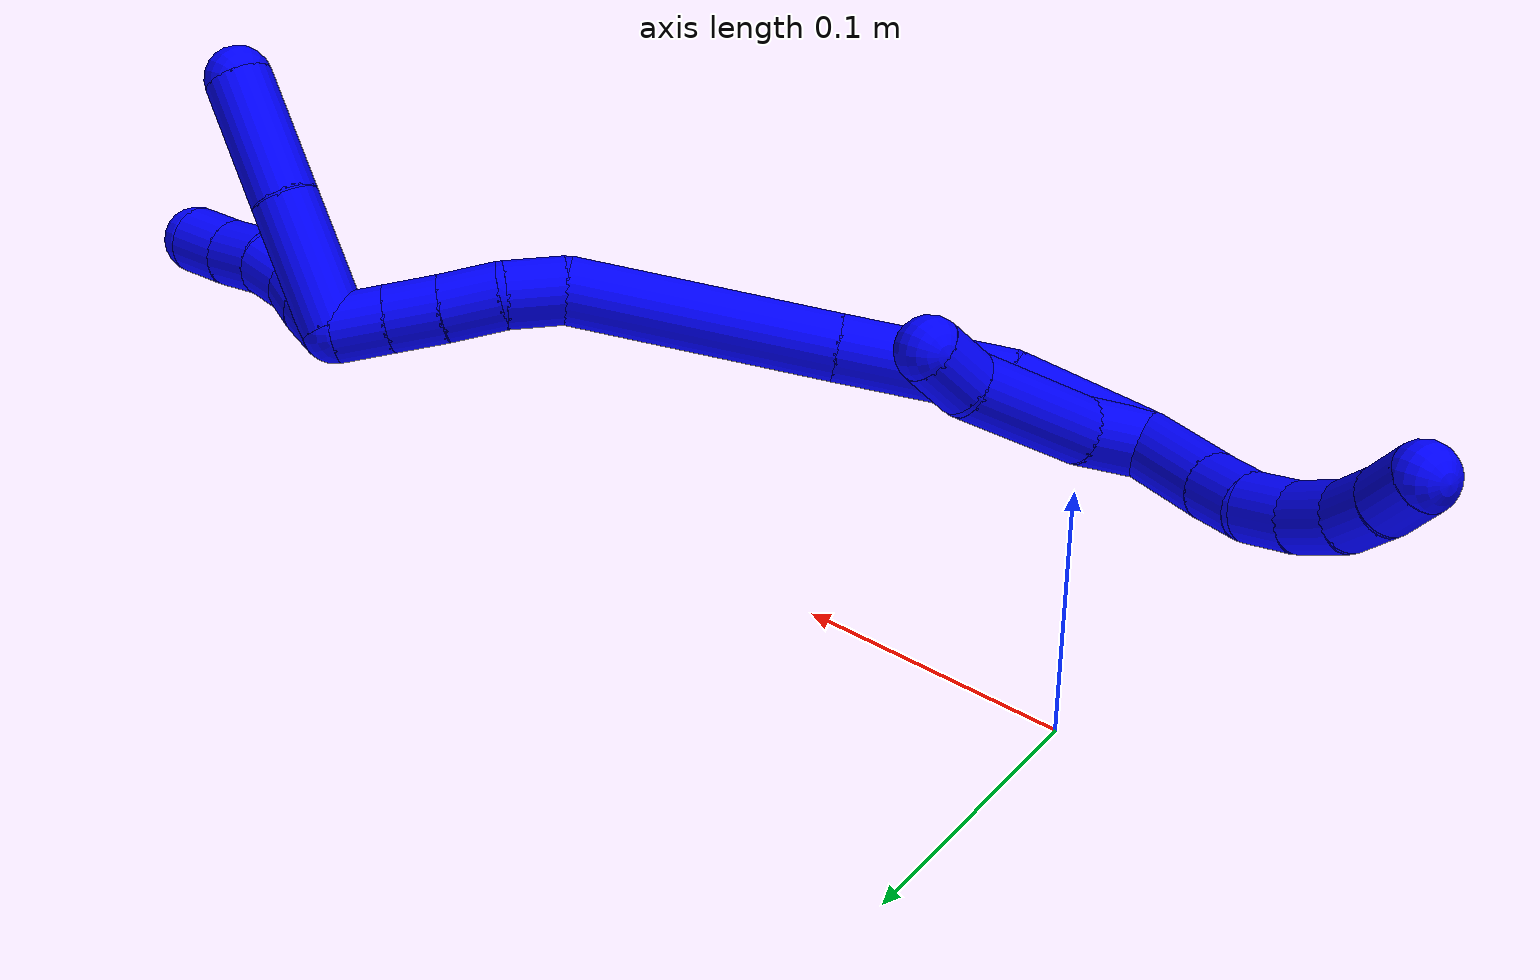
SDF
<sdf version="1.7">
 <world name="default">
  <model name="photoneo_s_sensor">
   <static>1</static>
   <pose>0 0 2 1.57079 1.57079 3.14159</pose>
   <link name="link">
    <inertial><mass>0.1</mass></inertial>
    <sensor name="sensor" type="depth">
     <update_rate>30</update_rate>
     <camera>
      <horizontal_fov>1.22</horizontal_fov>
      <image><width>1920</width><height>1200</height><format>B8G8R8</format></image>
      <clip><near>0.1</near><far>4</far></clip>
      <depth_camera><output>points</output></depth_camera>
     </camera>
     <plugin name="camera_plugin" filename="libgazebo_ros_depth_camera.so">
      <baseline>0.2</baseline>
      <alwaysOn>1</alwaysOn>
      <updateRate>0.0</updateRate>
      <cameraName>camera_ir</cameraName>
      <imageTopicName>/camera/color/image_raw</imageTopicName>
      <cameraInfoTopicName>/camera/color/camera_info</cameraInfoTopicName>
      <depthImageTopicName>/camera/depth/image_raw</depthImageTopicName>
      <depthImageCameraInfoTopicName>/camera/depth/camera_info</depthImageCameraInfoTopicName>
      <pointCloudTopicName>/camera/depth/points</pointCloudTopicName>
      <frameName>fr_optical</frameName>
      <pointCloudCutoff>0.1</pointCloudCutoff>
      <pointCloudCutoffMax>2.0</pointCloudCutoffMax>
      <distortionK1>0</distortionK1>
      <distortionK2>0</distortionK2>
      <distortionK3>0</distortionK3>
      <distortionT1>0</distortionT1>
      <distortionT2>0</distortionT2>
      <CxPrime>0</CxPrime>
      <Cx>0</Cx>
      <Cy>0</Cy>
      <focalLength>0</focalLength>
      <hackBaseline>0</hackBaseline>
     </plugin>
    </sensor>
   </link>
  </model>
  <model name="bin">
   <static>1</static>
   <link name="bottom">
    <collision name="collision-bottom">
     <pose>0 0 -0.01 0 -0 0</pose>
     <geometry><box><size>0.8 0.6 0.02</size></box></geometry>
     <surface>
      <friction><ode><mu>100</mu><mu2>100</mu2></ode></friction>
      <contact><collide_bitmask>65535</collide_bitmask></contact>
     </surface>
    </collision>
   </link>
   <link name="west_wall">
    <collision name="collision-west_wall">
     <pose>-0.41 0 0.1 0 -0 0</pose>
     <geometry><box><size>0.02 0.6 0.2</size></box></geometry>
     <surface>
      <friction><ode><mu>100</mu><mu2>100</mu2></ode></friction>
      <contact><collide_bitmask>65535</collide_bitmask></contact>
     </surface>
    </collision>
   </link>
   <link name="east_wall">
    <collision name="collision-east_wall">
     <pose>0.41 0 0.1 0 -0 0</pose>
     <geometry><box><size>0.02 0.6 0.2</size></box></geometry>
     <surface>
      <friction><ode><mu>100</mu><mu2>100</mu2></ode></friction>
      <contact><collide_bitmask>65535</collide_bitmask></contact>
     </surface>
    </collision>
   </link>
   <link name="south_wall">
    <collision name="collision-south_wall">
     <pose>0 -0.31 0.1 0 -0 0</pose>
     <geometry><box><size>0.8 0.02 0.2</size></box></geometry>
     <surface>
      <friction><ode><mu>100</mu><mu2>100</mu2></ode></friction>
      <contact><collide_bitmask>65535</collide_bitmask></contact>
     </surface>
    </collision>
   </link>
   <link name="north_wall">
    <collision name="collision-north_wall">
     <pose>0 0.31 0.1 0 -0 0</pose>
     <geometry><box><size>0.8 0.02 0.2</size></box></geometry>
     <surface>
      <friction><ode><mu>100</mu><mu2>100</mu2></ode></friction>
      <contact><collide_bitmask>65535</collide_bitmask></contact>
     </surface>
    </collision>
   </link>
  </model>
  <model name="1">
   <static>0</static>
   <link name="1">
    <collision name="collision-cylinder-e_1_2_8">
     <pose>0.000926 -0.003352 -0.021449 2.98657 0.042642 0.535924</pose>
     <geometry><cylinder><radius>0.0125</radius><length>0.043457</length></cylinder></geometry>
     <surface>
      <friction><ode><mu>1.16</mu><mu2>1.16</mu2><slip1>0</slip1><slip2>0</slip2></ode></friction>
      <contact><ode><kp>1e+06</kp><kd>1</kd><max_vel>0</max_vel><min_depth>0.001</min_depth></ode></contact>
     </surface>
    </collision>
    <visual name="visual-cylinder-e_1_2_8">
     <pose>0.000926 -0.003352 -0.021449 2.98657 0.042642 0.535924</pose>
     <geometry><cylinder><radius>0.0125</radius><length>0.043457</length></cylinder></geometry>
     <material><ambient>0 0 1 1</ambient></material>
    </visual>
    <collision name="collision-cylinder-e_2_8_9">
     <pose>0.00227 -0.007927 -0.053699 3.02885 0.038426 0.656372</pose>
     <geometry><cylinder><radius>0.0125</radius><length>0.021757</length></cylinder></geometry>
     <surface>
      <friction><ode><mu>1.16</mu><mu2>1.16</mu2><slip1>0</slip1><slip2>0</slip2></ode></friction>
      <contact><ode><kp>1e+06</kp><kd>1</kd><max_vel>0</max_vel><min_depth>0.001</min_depth></ode></contact>
     </surface>
    </collision>
    <visual name="visual-cylinder-e_2_8_9">
     <pose>0.00227 -0.007927 -0.053699 3.02885 0.038426 0.656372</pose>
     <geometry><cylinder><radius>0.0125</radius><length>0.021757</length></cylinder></geometry>
     <material><ambient>0 0 1 1</ambient></material>
    </visual>
    <collision name="collision-cylinder-e_3_9_10">
     <pose>0.000575 -0.009102 -0.074659 -3.13692 -0.205103 3.09622</pose>
     <geometry><cylinder><radius>0.0125</radius><length>0.020754</length></cylinder></geometry>
     <surface>
      <friction><ode><mu>1.16</mu><mu2>1.16</mu2><slip1>0</slip1><slip2>0</slip2></ode></friction>
      <contact><ode><kp>1e+06</kp><kd>1</kd><max_vel>0</max_vel><min_depth>0.001</min_depth></ode></contact>
     </surface>
    </collision>
    <visual name="visual-cylinder-e_3_9_10">
     <pose>0.000575 -0.009102 -0.074659 -3.13692 -0.205103 3.09622</pose>
     <geometry><cylinder><radius>0.0125</radius><length>0.020754</length></cylinder></geometry>
     <material><ambient>0 0 1 1</ambient></material>
    </visual>
    <collision name="collision-cylinder-e_4_10_11">
     <pose>-0.002664 -0.006641 -0.095869 -2.92656 -0.099172 0.861921</pose>
     <geometry><cylinder><radius>0.0125</radius><length>0.022733</length></cylinder></geometry>
     <surface>
      <friction><ode><mu>1.16</mu><mu2>1.16</mu2><slip1>0</slip1><slip2>0</slip2></ode></friction>
      <contact><ode><kp>1e+06</kp><kd>1</kd><max_vel>0</max_vel><min_depth>0.001</min_depth></ode></contact>
     </surface>
    </collision>
    <visual name="visual-cylinder-e_4_10_11">
     <pose>-0.002664 -0.006641 -0.095869 -2.92656 -0.099172 0.861921</pose>
     <geometry><cylinder><radius>0.0125</radius><length>0.022733</length></cylinder></geometry>
     <material><ambient>0 0 1 1</ambient></material>
    </visual>
    <collision name="collision-cylinder-e_5_11_12">
     <pose>-0.003726 0.000341 -0.116153 -2.68209 0.006189 -0.026459</pose>
     <geometry><cylinder><radius>0.0125</radius><length>0.020605</length></cylinder></geometry>
     <surface>
      <friction><ode><mu>1.16</mu><mu2>1.16</mu2><slip1>0</slip1><slip2>0</slip2></ode></friction>
      <contact><ode><kp>1e+06</kp><kd>1</kd><max_vel>0</max_vel><min_depth>0.001</min_depth></ode></contact>
     </surface>
    </collision>
    <visual name="visual-cylinder-e_5_11_12">
     <pose>-0.003726 0.000341 -0.116153 -2.68209 0.006189 -0.026459</pose>
     <geometry><cylinder><radius>0.0125</radius><length>0.020605</length></cylinder></geometry>
     <material><ambient>0 0 1 1</ambient></material>
    </visual>
    <collision name="collision-cylinder-e_6_12_6">
     <pose>-0.003768 0.010589 -0.134035 -2.56065 -0.010216 0.034172</pose>
     <geometry><cylinder><radius>0.0125</radius><length>0.020693</length></cylinder></geometry>
     <surface>
      <friction><ode><mu>1.16</mu><mu2>1.16</mu2><slip1>0</slip1><slip2>0</slip2></ode></friction>
      <contact><ode><kp>1e+06</kp><kd>1</kd><max_vel>0</max_vel><min_depth>0.001</min_depth></ode></contact>
     </surface>
    </collision>
    <visual name="visual-cylinder-e_6_12_6">
     <pose>-0.003768 0.010589 -0.134035 -2.56065 -0.010216 0.034172</pose>
     <geometry><cylinder><radius>0.0125</radius><length>0.020693</length></cylinder></geometry>
     <material><ambient>0 0 1 1</ambient></material>
    </visual>
    <collision name="collision-cylinder-e_1_2_13">
     <pose>0.013108 0.003831 0.001223 -1.26171 1.27311 -0.990161</pose>
     <geometry><cylinder><radius>0.0125</radius><length>0.027422</length></cylinder></geometry>
     <surface>
      <friction><ode><mu>1.16</mu><mu2>1.16</mu2><slip1>0</slip1><slip2>0</slip2></ode></friction>
      <contact><ode><kp>1e+06</kp><kd>1</kd><max_vel>0</max_vel><min_depth>0.001</min_depth></ode></contact>
     </surface>
    </collision>
    <visual name="visual-cylinder-e_1_2_13">
     <pose>0.013108 0.003831 0.001223 -1.26171 1.27311 -0.990161</pose>
     <geometry><cylinder><radius>0.0125</radius><length>0.027422</length></cylinder></geometry>
     <material><ambient>0 0 1 1</ambient></material>
    </visual>
    <collision name="collision-cylinder-e_2_13_14">
     <pose>0.049959 0.018603 0.002453 -1.57021 1.13899 -1.13846</pose>
     <geometry><cylinder><radius>0.0125</radius><length>0.052285</length></cylinder></geometry>
     <surface>
      <friction><ode><mu>1.16</mu><mu2>1.16</mu2><slip1>0</slip1><slip2>0</slip2></ode></friction>
      <contact><ode><kp>1e+06</kp><kd>1</kd><max_vel>0</max_vel><min_depth>0.001</min_depth></ode></contact>
     </surface>
    </collision>
    <visual name="visual-cylinder-e_2_13_14">
     <pose>0.049959 0.018603 0.002453 -1.57021 1.13899 -1.13846</pose>
     <geometry><cylinder><radius>0.0125</radius><length>0.052285</length></cylinder></geometry>
     <material><ambient>0 0 1 1</ambient></material>
    </visual>
    <collision name="collision-cylinder-e_3_14_5">
     <pose>0.081417 0.036133 0.002381 -1.58268 0.863915 -0.87299</pose>
     <geometry><cylinder><radius>0.0125</radius><length>0.020293</length></cylinder></geometry>
     <surface>
      <friction><ode><mu>1.16</mu><mu2>1.16</mu2><slip1>0</slip1><slip2>0</slip2></ode></friction>
      <contact><ode><kp>1e+06</kp><kd>1</kd><max_vel>0</max_vel><min_depth>0.001</min_depth></ode></contact>
     </surface>
    </collision>
    <visual name="visual-cylinder-e_3_14_5">
     <pose>0.081417 0.036133 0.002381 -1.58268 0.863915 -0.87299</pose>
     <geometry><cylinder><radius>0.0125</radius><length>0.020293</length></cylinder></geometry>
     <material><ambient>0 0 1 1</ambient></material>
    </visual>
    <collision name="collision-cylinder-e_1_2_15">
     <pose>0.016955 0.00983 0.017413 -0.513935 0.703279 -0.192225</pose>
     <geometry><cylinder><radius>0.0125</radius><length>0.052433</length></cylinder></geometry>
     <surface>
      <friction><ode><mu>1.16</mu><mu2>1.16</mu2><slip1>0</slip1><slip2>0</slip2></ode></friction>
      <contact><ode><kp>1e+06</kp><kd>1</kd><max_vel>0</max_vel><min_depth>0.001</min_depth></ode></contact>
     </surface>
    </collision>
    <visual name="visual-cylinder-e_1_2_15">
     <pose>0.016955 0.00983 0.017413 -0.513935 0.703279 -0.192225</pose>
     <geometry><cylinder><radius>0.0125</radius><length>0.052433</length></cylinder></geometry>
     <material><ambient>0 0 1 1</ambient></material>
    </visual>
    <collision name="collision-cylinder-e_2_15_16">
     <pose>0.060426 0.026247 0.051254 -0.381293 0.982231 -0.205703</pose>
     <geometry><cylinder><radius>0.0125</radius><length>0.063761</length></cylinder></geometry>
     <surface>
      <friction><ode><mu>1.16</mu><mu2>1.16</mu2><slip1>0</slip1><slip2>0</slip2></ode></friction>
      <contact><ode><kp>1e+06</kp><kd>1</kd><max_vel>0</max_vel><min_depth>0.001</min_depth></ode></contact>
     </surface>
    </collision>
    <visual name="visual-cylinder-e_2_15_16">
     <pose>0.060426 0.026247 0.051254 -0.381293 0.982231 -0.205703</pose>
     <geometry><cylinder><radius>0.0125</radius><length>0.063761</length></cylinder></geometry>
     <material><ambient>0 0 1 1</ambient></material>
    </visual>
    <collision name="collision-cylinder-e_3_16_17">
     <pose>0.128698 0.043588 0.092204 -0.413341 1.00058 -0.228241</pose>
     <geometry><cylinder><radius>0.0125</radius><length>0.099208</length></cylinder></geometry>
     <surface>
      <friction><ode><mu>1.16</mu><mu2>1.16</mu2><slip1>0</slip1><slip2>0</slip2></ode></friction>
      <contact><ode><kp>1e+06</kp><kd>1</kd><max_vel>0</max_vel><min_depth>0.001</min_depth></ode></contact>
     </surface>
    </collision>
    <visual name="visual-cylinder-e_3_16_17">
     <pose>0.128698 0.043588 0.092204 -0.413341 1.00058 -0.228241</pose>
     <geometry><cylinder><radius>0.0125</radius><length>0.099208</length></cylinder></geometry>
     <material><ambient>0 0 1 1</ambient></material>
    </visual>
    <collision name="collision-cylinder-e_4_17_18">
     <pose>0.180988 0.053869 0.120475 0.12594 1.22639 0.088682</pose>
     <geometry><cylinder><radius>0.0125</radius><length>0.022383</length></cylinder></geometry>
     <surface>
      <friction><ode><mu>1.16</mu><mu2>1.16</mu2><slip1>0</slip1><slip2>0</slip2></ode></friction>
      <contact><ode><kp>1e+06</kp><kd>1</kd><max_vel>0</max_vel><min_depth>0.001</min_depth></ode></contact>
     </surface>
    </collision>
    <visual name="visual-cylinder-e_4_17_18">
     <pose>0.180988 0.053869 0.120475 0.12594 1.22639 0.088682</pose>
     <geometry><cylinder><radius>0.0125</radius><length>0.022383</length></cylinder></geometry>
     <material><ambient>0 0 1 1</ambient></material>
    </visual>
    <collision name="collision-cylinder-e_5_18_19">
     <pose>0.200833 0.051042 0.12965 0.409064 1.0049 0.226983</pose>
     <geometry><cylinder><radius>0.0125</radius><length>0.02206</length></cylinder></geometry>
     <surface>
      <friction><ode><mu>1.16</mu><mu2>1.16</mu2><slip1>0</slip1><slip2>0</slip2></ode></friction>
      <contact><ode><kp>1e+06</kp><kd>1</kd><max_vel>0</max_vel><min_depth>0.001</min_depth></ode></contact>
     </surface>
    </collision>
    <visual name="visual-cylinder-e_5_18_19">
     <pose>0.200833 0.051042 0.12965 0.409064 1.0049 0.226983</pose>
     <geometry><cylinder><radius>0.0125</radius><length>0.02206</length></cylinder></geometry>
     <material><ambient>0 0 1 1</ambient></material>
    </visual>
    <collision name="collision-cylinder-e_6_19_20">
     <pose>0.218621 0.046858 0.140203 0.34314 0.999828 0.188719</pose>
     <geometry><cylinder><radius>0.0125</radius><length>0.020149</length></cylinder></geometry>
     <surface>
      <friction><ode><mu>1.16</mu><mu2>1.16</mu2><slip1>0</slip1><slip2>0</slip2></ode></friction>
      <contact><ode><kp>1e+06</kp><kd>1</kd><max_vel>0</max_vel><min_depth>0.001</min_depth></ode></contact>
     </surface>
    </collision>
    <visual name="visual-cylinder-e_6_19_20">
     <pose>0.218621 0.046858 0.140203 0.34314 0.999828 0.188719</pose>
     <geometry><cylinder><radius>0.0125</radius><length>0.020149</length></cylinder></geometry>
     <material><ambient>0 0 1 1</ambient></material>
    </visual>
    <collision name="collision-cylinder-e_7_20_1">
     <pose>0.235526 0.043204 0.150398 0.345256 1.00225 0.190443</pose>
     <geometry><cylinder><radius>0.0125</radius><length>0.020005</length></cylinder></geometry>
     <surface>
      <friction><ode><mu>1.16</mu><mu2>1.16</mu2><slip1>0</slip1><slip2>0</slip2></ode></friction>
      <contact><ode><kp>1e+06</kp><kd>1</kd><max_vel>0</max_vel><min_depth>0.001</min_depth></ode></contact>
     </surface>
    </collision>
    <visual name="visual-cylinder-e_7_20_1">
     <pose>0.235526 0.043204 0.150398 0.345256 1.00225 0.190443</pose>
     <geometry><cylinder><radius>0.0125</radius><length>0.020005</length></cylinder></geometry>
     <material><ambient>0 0 1 1</ambient></material>
    </visual>
    <collision name="collision-cylinder-e_1_1_21">
     <pose>0.243693 0.04368 0.165194 -0.232046 -0.026199 0.003054</pose>
     <geometry><cylinder><radius>0.0125</radius><length>0.02</length></cylinder></geometry>
     <surface>
      <friction><ode><mu>1.16</mu><mu2>1.16</mu2><slip1>0</slip1><slip2>0</slip2></ode></friction>
      <contact><ode><kp>1e+06</kp><kd>1</kd><max_vel>0</max_vel><min_depth>0.001</min_depth></ode></contact>
     </surface>
    </collision>
    <visual name="visual-cylinder-e_1_1_21">
     <pose>0.243693 0.04368 0.165194 -0.232046 -0.026199 0.003054</pose>
     <geometry><cylinder><radius>0.0125</radius><length>0.02</length></cylinder></geometry>
     <material><ambient>0 0 1 1</ambient></material>
    </visual>
    <collision name="collision-cylinder-e_2_21_22">
     <pose>0.242907 0.049104 0.184408 -0.318243 -0.052408 0.008412</pose>
     <geometry><cylinder><radius>0.0125</radius><length>0.02</length></cylinder></geometry>
     <surface>
      <friction><ode><mu>1.16</mu><mu2>1.16</mu2><slip1>0</slip1><slip2>0</slip2></ode></friction>
      <contact><ode><kp>1e+06</kp><kd>1</kd><max_vel>0</max_vel><min_depth>0.001</min_depth></ode></contact>
     </surface>
    </collision>
    <visual name="visual-cylinder-e_2_21_22">
     <pose>0.242907 0.049104 0.184408 -0.318243 -0.052408 0.008412</pose>
     <geometry><cylinder><radius>0.0125</radius><length>0.02</length></cylinder></geometry>
     <material><ambient>0 0 1 1</ambient></material>
    </visual>
    <collision name="collision-cylinder-e_3_22_23">
     <pose>0.244918 0.055084 0.203135 -0.299681 0.256299 -0.038902</pose>
     <geometry><cylinder><radius>0.0125</radius><length>0.02</length></cylinder></geometry>
     <surface>
      <friction><ode><mu>1.16</mu><mu2>1.16</mu2><slip1>0</slip1><slip2>0</slip2></ode></friction>
      <contact><ode><kp>1e+06</kp><kd>1</kd><max_vel>0</max_vel><min_depth>0.001</min_depth></ode></contact>
     </surface>
    </collision>
    <visual name="visual-cylinder-e_3_22_23">
     <pose>0.244918 0.055084 0.203135 -0.299681 0.256299 -0.038902</pose>
     <geometry><cylinder><radius>0.0125</radius><length>0.02</length></cylinder></geometry>
     <material><ambient>0 0 1 1</ambient></material>
    </visual>
    <collision name="collision-cylinder-e_4_23_24">
     <pose>0.250787 0.05871 0.221773 -0.081826 0.339873 -0.014048</pose>
     <geometry><cylinder><radius>0.0125</radius><length>0.02</length></cylinder></geometry>
     <surface>
      <friction><ode><mu>1.16</mu><mu2>1.16</mu2><slip1>0</slip1><slip2>0</slip2></ode></friction>
      <contact><ode><kp>1e+06</kp><kd>1</kd><max_vel>0</max_vel><min_depth>0.001</min_depth></ode></contact>
     </surface>
    </collision>
    <visual name="visual-cylinder-e_4_23_24">
     <pose>0.250787 0.05871 0.221773 -0.081826 0.339873 -0.014048</pose>
     <geometry><cylinder><radius>0.0125</radius><length>0.02</length></cylinder></geometry>
     <material><ambient>0 0 1 1</ambient></material>
    </visual>
    <collision name="collision-cylinder-e_5_24_4">
     <pose>0.257691 0.061099 0.24037 -0.174097 0.365053 -0.032214</pose>
     <geometry><cylinder><radius>0.0125</radius><length>0.02</length></cylinder></geometry>
     <surface>
      <friction><ode><mu>1.16</mu><mu2>1.16</mu2><slip1>0</slip1><slip2>0</slip2></ode></friction>
      <contact><ode><kp>1e+06</kp><kd>1</kd><max_vel>0</max_vel><min_depth>0.001</min_depth></ode></contact>
     </surface>
    </collision>
    <visual name="visual-cylinder-e_5_24_4">
     <pose>0.257691 0.061099 0.24037 -0.174097 0.365053 -0.032214</pose>
     <geometry><cylinder><radius>0.0125</radius><length>0.02</length></cylinder></geometry>
     <material><ambient>0 0 1 1</ambient></material>
    </visual>
    <collision name="collision-cylinder-e_1_1_25">
     <pose>0.248038 0.063605 0.167098 -1.08858 0.16138 -0.097814</pose>
     <geometry><cylinder><radius>0.0125</radius><length>0.050828</length></cylinder></geometry>
     <surface>
      <friction><ode><mu>1.16</mu><mu2>1.16</mu2><slip1>0</slip1><slip2>0</slip2></ode></friction>
      <contact><ode><kp>1e+06</kp><kd>1</kd><max_vel>0</max_vel><min_depth>0.001</min_depth></ode></contact>
     </surface>
    </collision>
    <visual name="visual-cylinder-e_1_1_25">
     <pose>0.248038 0.063605 0.167098 -1.08858 0.16138 -0.097814</pose>
     <geometry><cylinder><radius>0.0125</radius><length>0.050828</length></cylinder></geometry>
     <material><ambient>0 0 1 1</ambient></material>
    </visual>
    <collision name="collision-cylinder-e_2_25_3">
     <pose>0.255262 0.106642 0.191434 -1.02284 0.128086 -0.071952</pose>
     <geometry><cylinder><radius>0.0125</radius><length>0.049172</length></cylinder></geometry>
     <surface>
      <friction><ode><mu>1.16</mu><mu2>1.16</mu2><slip1>0</slip1><slip2>0</slip2></ode></friction>
      <contact><ode><kp>1e+06</kp><kd>1</kd><max_vel>0</max_vel><min_depth>0.001</min_depth></ode></contact>
     </surface>
    </collision>
    <visual name="visual-cylinder-e_2_25_3">
     <pose>0.255262 0.106642 0.191434 -1.02284 0.128086 -0.071952</pose>
     <geometry><cylinder><radius>0.0125</radius><length>0.049172</length></cylinder></geometry>
     <material><ambient>0 0 1 1</ambient></material>
    </visual>
    <collision name="collision-sphere-3">
     <pose>0.258403 0.127457 0.204137 0 -0 0</pose>
     <geometry><sphere><radius>0.0125</radius></sphere></geometry>
     <surface>
      <friction><ode><mu>1.16</mu><mu2>1.16</mu2><slip1>0</slip1><slip2>0</slip2></ode></friction>
      <contact><ode><kp>1e+06</kp><kd>1</kd><max_vel>0</max_vel><min_depth>0.001</min_depth></ode></contact>
     </surface>
    </collision>
    <visual name="visual-sphere-3">
     <pose>0.258403 0.127457 0.204137 0 -0 0</pose>
     <geometry><sphere><radius>0.0125</radius></sphere></geometry>
     <material><ambient>0 0 1 1</ambient></material>
    </visual>
    <collision name="collision-sphere-25">
     <pose>0.252122 0.085828 0.178731 0 -0 0</pose>
     <geometry><sphere><radius>0.0125</radius></sphere></geometry>
     <surface>
      <friction><ode><mu>1.16</mu><mu2>1.16</mu2><slip1>0</slip1><slip2>0</slip2></ode></friction>
      <contact><ode><kp>1e+06</kp><kd>1</kd><max_vel>0</max_vel><min_depth>0.001</min_depth></ode></contact>
     </surface>
    </collision>
    <visual name="visual-sphere-25">
     <pose>0.252122 0.085828 0.178731 0 -0 0</pose>
     <geometry><sphere><radius>0.0125</radius></sphere></geometry>
     <material><ambient>0 0 1 1</ambient></material>
    </visual>
    <collision name="collision-sphere-4">
     <pose>0.261261 0.062717 0.24957 0 -0 0</pose>
     <geometry><sphere><radius>0.0125</radius></sphere></geometry>
     <surface>
      <friction><ode><mu>1.16</mu><mu2>1.16</mu2><slip1>0</slip1><slip2>0</slip2></ode></friction>
      <contact><ode><kp>1e+06</kp><kd>1</kd><max_vel>0</max_vel><min_depth>0.001</min_depth></ode></contact>
     </surface>
    </collision>
    <visual name="visual-sphere-4">
     <pose>0.261261 0.062717 0.24957 0 -0 0</pose>
     <geometry><sphere><radius>0.0125</radius></sphere></geometry>
     <material><ambient>0 0 1 1</ambient></material>
    </visual>
    <collision name="collision-sphere-24">
     <pose>0.254121 0.059481 0.23117 0 -0 0</pose>
     <geometry><sphere><radius>0.0125</radius></sphere></geometry>
     <surface>
      <friction><ode><mu>1.16</mu><mu2>1.16</mu2><slip1>0</slip1><slip2>0</slip2></ode></friction>
      <contact><ode><kp>1e+06</kp><kd>1</kd><max_vel>0</max_vel><min_depth>0.001</min_depth></ode></contact>
     </surface>
    </collision>
    <visual name="visual-sphere-24">
     <pose>0.254121 0.059481 0.23117 0 -0 0</pose>
     <geometry><sphere><radius>0.0125</radius></sphere></geometry>
     <material><ambient>0 0 1 1</ambient></material>
    </visual>
    <collision name="collision-sphere-23">
     <pose>0.247453 0.05794 0.212377 0 -0 0</pose>
     <geometry><sphere><radius>0.0125</radius></sphere></geometry>
     <surface>
      <friction><ode><mu>1.16</mu><mu2>1.16</mu2><slip1>0</slip1><slip2>0</slip2></ode></friction>
      <contact><ode><kp>1e+06</kp><kd>1</kd><max_vel>0</max_vel><min_depth>0.001</min_depth></ode></contact>
     </surface>
    </collision>
    <visual name="visual-sphere-23">
     <pose>0.247453 0.05794 0.212377 0 -0 0</pose>
     <geometry><sphere><radius>0.0125</radius></sphere></geometry>
     <material><ambient>0 0 1 1</ambient></material>
    </visual>
    <collision name="collision-sphere-22">
     <pose>0.242383 0.052228 0.193893 0 -0 0</pose>
     <geometry><sphere><radius>0.0125</radius></sphere></geometry>
     <surface>
      <friction><ode><mu>1.16</mu><mu2>1.16</mu2><slip1>0</slip1><slip2>0</slip2></ode></friction>
      <contact><ode><kp>1e+06</kp><kd>1</kd><max_vel>0</max_vel><min_depth>0.001</min_depth></ode></contact>
     </surface>
    </collision>
    <visual name="visual-sphere-22">
     <pose>0.242383 0.052228 0.193893 0 -0 0</pose>
     <geometry><sphere><radius>0.0125</radius></sphere></geometry>
     <material><ambient>0 0 1 1</ambient></material>
    </visual>
    <collision name="collision-sphere-21">
     <pose>0.243431 0.045979 0.174923 0 -0 0</pose>
     <geometry><sphere><radius>0.0125</radius></sphere></geometry>
     <surface>
      <friction><ode><mu>1.16</mu><mu2>1.16</mu2><slip1>0</slip1><slip2>0</slip2></ode></friction>
      <contact><ode><kp>1e+06</kp><kd>1</kd><max_vel>0</max_vel><min_depth>0.001</min_depth></ode></contact>
     </surface>
    </collision>
    <visual name="visual-sphere-21">
     <pose>0.243431 0.045979 0.174923 0 -0 0</pose>
     <geometry><sphere><radius>0.0125</radius></sphere></geometry>
     <material><ambient>0 0 1 1</ambient></material>
    </visual>
    <collision name="collision-sphere-1">
     <pose>0.243955 0.041381 0.155466 0 -0 0</pose>
     <geometry><sphere><radius>0.0125</radius></sphere></geometry>
     <surface>
      <friction><ode><mu>1.16</mu><mu2>1.16</mu2><slip1>0</slip1><slip2>0</slip2></ode></friction>
      <contact><ode><kp>1e+06</kp><kd>1</kd><max_vel>0</max_vel><min_depth>0.001</min_depth></ode></contact>
     </surface>
    </collision>
    <visual name="visual-sphere-1">
     <pose>0.243955 0.041381 0.155466 0 -0 0</pose>
     <geometry><sphere><radius>0.0125</radius></sphere></geometry>
     <material><ambient>0 0 1 1</ambient></material>
    </visual>
    <collision name="collision-sphere-12">
     <pose>-0.003662 0.004911 -0.125387 0 -0 0</pose>
     <geometry><sphere><radius>0.0125</radius></sphere></geometry>
     <surface>
      <friction><ode><mu>1.16</mu><mu2>1.16</mu2><slip1>0</slip1><slip2>0</slip2></ode></friction>
      <contact><ode><kp>1e+06</kp><kd>1</kd><max_vel>0</max_vel><min_depth>0.001</min_depth></ode></contact>
     </surface>
    </collision>
    <visual name="visual-sphere-12">
     <pose>-0.003662 0.004911 -0.125387 0 -0 0</pose>
     <geometry><sphere><radius>0.0125</radius></sphere></geometry>
     <material><ambient>0 0 1 1</ambient></material>
    </visual>
    <collision name="collision-sphere-11">
     <pose>-0.003789 -0.004228 -0.106919 0 -0 0</pose>
     <geometry><sphere><radius>0.0125</radius></sphere></geometry>
     <surface>
      <friction><ode><mu>1.16</mu><mu2>1.16</mu2><slip1>0</slip1><slip2>0</slip2></ode></friction>
      <contact><ode><kp>1e+06</kp><kd>1</kd><max_vel>0</max_vel><min_depth>0.001</min_depth></ode></contact>
     </surface>
    </collision>
    <visual name="visual-sphere-11">
     <pose>-0.003789 -0.004228 -0.106919 0 -0 0</pose>
     <geometry><sphere><radius>0.0125</radius></sphere></geometry>
     <material><ambient>0 0 1 1</ambient></material>
    </visual>
    <collision name="collision-sphere-10">
     <pose>-0.001539 -0.009055 -0.084819 0 -0 0</pose>
     <geometry><sphere><radius>0.0125</radius></sphere></geometry>
     <surface>
      <friction><ode><mu>1.16</mu><mu2>1.16</mu2><slip1>0</slip1><slip2>0</slip2></ode></friction>
      <contact><ode><kp>1e+06</kp><kd>1</kd><max_vel>0</max_vel><min_depth>0.001</min_depth></ode></contact>
     </surface>
    </collision>
    <visual name="visual-sphere-10">
     <pose>-0.001539 -0.009055 -0.084819 0 -0 0</pose>
     <geometry><sphere><radius>0.0125</radius></sphere></geometry>
     <material><ambient>0 0 1 1</ambient></material>
    </visual>
    <collision name="collision-sphere-9">
     <pose>0.002688 -0.00915 -0.0645 0 -0 0</pose>
     <geometry><sphere><radius>0.0125</radius></sphere></geometry>
     <surface>
      <friction><ode><mu>1.16</mu><mu2>1.16</mu2><slip1>0</slip1><slip2>0</slip2></ode></friction>
      <contact><ode><kp>1e+06</kp><kd>1</kd><max_vel>0</max_vel><min_depth>0.001</min_depth></ode></contact>
     </surface>
    </collision>
    <visual name="visual-sphere-9">
     <pose>0.002688 -0.00915 -0.0645 0 -0 0</pose>
     <geometry><sphere><radius>0.0125</radius></sphere></geometry>
     <material><ambient>0 0 1 1</ambient></material>
    </visual>
    <collision name="collision-sphere-2">
     <geometry><sphere><radius>0.0125</radius></sphere></geometry>
     <surface>
      <friction><ode><mu>1.16</mu><mu2>1.16</mu2><slip1>0</slip1><slip2>0</slip2></ode></friction>
      <contact><ode><kp>1e+06</kp><kd>1</kd><max_vel>0</max_vel><min_depth>0.001</min_depth></ode></contact>
     </surface>
    </collision>
    <visual name="visual-sphere-2">
     <geometry><sphere><radius>0.0125</radius></sphere></geometry>
     <material><ambient>0 0 1 1</ambient></material>
    </visual>
    <collision name="collision-sphere-19">
     <pose>0.210144 0.04869 0.135076 0 -0 0</pose>
     <geometry><sphere><radius>0.0125</radius></sphere></geometry>
     <surface>
      <friction><ode><mu>1.16</mu><mu2>1.16</mu2><slip1>0</slip1><slip2>0</slip2></ode></friction>
      <contact><ode><kp>1e+06</kp><kd>1</kd><max_vel>0</max_vel><min_depth>0.001</min_depth></ode></contact>
     </surface>
    </collision>
    <visual name="visual-sphere-19">
     <pose>0.210144 0.04869 0.135076 0 -0 0</pose>
     <geometry><sphere><radius>0.0125</radius></sphere></geometry>
     <material><ambient>0 0 1 1</ambient></material>
    </visual>
    <collision name="collision-sphere-8">
     <pose>0.001853 -0.006704 -0.042897 0 -0 0</pose>
     <geometry><sphere><radius>0.0125</radius></sphere></geometry>
     <surface>
      <friction><ode><mu>1.16</mu><mu2>1.16</mu2><slip1>0</slip1><slip2>0</slip2></ode></friction>
      <contact><ode><kp>1e+06</kp><kd>1</kd><max_vel>0</max_vel><min_depth>0.001</min_depth></ode></contact>
     </surface>
    </collision>
    <visual name="visual-sphere-8">
     <pose>0.001853 -0.006704 -0.042897 0 -0 0</pose>
     <geometry><sphere><radius>0.0125</radius></sphere></geometry>
     <material><ambient>0 0 1 1</ambient></material>
    </visual>
    <collision name="collision-sphere-6">
     <pose>-0.003873 0.016267 -0.142684 0 -0 0</pose>
     <geometry><sphere><radius>0.0125</radius></sphere></geometry>
     <surface>
      <friction><ode><mu>1.16</mu><mu2>1.16</mu2><slip1>0</slip1><slip2>0</slip2></ode></friction>
      <contact><ode><kp>1e+06</kp><kd>1</kd><max_vel>0</max_vel><min_depth>0.001</min_depth></ode></contact>
     </surface>
    </collision>
    <visual name="visual-sphere-6">
     <pose>-0.003873 0.016267 -0.142684 0 -0 0</pose>
     <geometry><sphere><radius>0.0125</radius></sphere></geometry>
     <material><ambient>0 0 1 1</ambient></material>
    </visual>
    <collision name="collision-sphere-13">
     <pose>0.026216 0.007662 0.002447 0 -0 0</pose>
     <geometry><sphere><radius>0.0125</radius></sphere></geometry>
     <surface>
      <friction><ode><mu>1.16</mu><mu2>1.16</mu2><slip1>0</slip1><slip2>0</slip2></ode></friction>
      <contact><ode><kp>1e+06</kp><kd>1</kd><max_vel>0</max_vel><min_depth>0.001</min_depth></ode></contact>
     </surface>
    </collision>
    <visual name="visual-sphere-13">
     <pose>0.026216 0.007662 0.002447 0 -0 0</pose>
     <geometry><sphere><radius>0.0125</radius></sphere></geometry>
     <material><ambient>0 0 1 1</ambient></material>
    </visual>
    <collision name="collision-sphere-14">
     <pose>0.073702 0.029544 0.002459 0 -0 0</pose>
     <geometry><sphere><radius>0.0125</radius></sphere></geometry>
     <surface>
      <friction><ode><mu>1.16</mu><mu2>1.16</mu2><slip1>0</slip1><slip2>0</slip2></ode></friction>
      <contact><ode><kp>1e+06</kp><kd>1</kd><max_vel>0</max_vel><min_depth>0.001</min_depth></ode></contact>
     </surface>
    </collision>
    <visual name="visual-sphere-14">
     <pose>0.073702 0.029544 0.002459 0 -0 0</pose>
     <geometry><sphere><radius>0.0125</radius></sphere></geometry>
     <material><ambient>0 0 1 1</ambient></material>
    </visual>
    <collision name="collision-sphere-5">
     <pose>0.089132 0.042722 0.002303 0 -0 0</pose>
     <geometry><sphere><radius>0.0125</radius></sphere></geometry>
     <surface>
      <friction><ode><mu>1.16</mu><mu2>1.16</mu2><slip1>0</slip1><slip2>0</slip2></ode></friction>
      <contact><ode><kp>1e+06</kp><kd>1</kd><max_vel>0</max_vel><min_depth>0.001</min_depth></ode></contact>
     </surface>
    </collision>
    <visual name="visual-sphere-5">
     <pose>0.089132 0.042722 0.002303 0 -0 0</pose>
     <geometry><sphere><radius>0.0125</radius></sphere></geometry>
     <material><ambient>0 0 1 1</ambient></material>
    </visual>
    <collision name="collision-sphere-15">
     <pose>0.03391 0.01966 0.034826 0 -0 0</pose>
     <geometry><sphere><radius>0.0125</radius></sphere></geometry>
     <surface>
      <friction><ode><mu>1.16</mu><mu2>1.16</mu2><slip1>0</slip1><slip2>0</slip2></ode></friction>
      <contact><ode><kp>1e+06</kp><kd>1</kd><max_vel>0</max_vel><min_depth>0.001</min_depth></ode></contact>
     </surface>
    </collision>
    <visual name="visual-sphere-15">
     <pose>0.03391 0.01966 0.034826 0 -0 0</pose>
     <geometry><sphere><radius>0.0125</radius></sphere></geometry>
     <material><ambient>0 0 1 1</ambient></material>
    </visual>
    <collision name="collision-sphere-16">
     <pose>0.086942 0.032833 0.067682 0 -0 0</pose>
     <geometry><sphere><radius>0.0125</radius></sphere></geometry>
     <surface>
      <friction><ode><mu>1.16</mu><mu2>1.16</mu2><slip1>0</slip1><slip2>0</slip2></ode></friction>
      <contact><ode><kp>1e+06</kp><kd>1</kd><max_vel>0</max_vel><min_depth>0.001</min_depth></ode></contact>
     </surface>
    </collision>
    <visual name="visual-sphere-16">
     <pose>0.086942 0.032833 0.067682 0 -0 0</pose>
     <geometry><sphere><radius>0.0125</radius></sphere></geometry>
     <material><ambient>0 0 1 1</ambient></material>
    </visual>
    <collision name="collision-sphere-17">
     <pose>0.170454 0.054344 0.116726 0 -0 0</pose>
     <geometry><sphere><radius>0.0125</radius></sphere></geometry>
     <surface>
      <friction><ode><mu>1.16</mu><mu2>1.16</mu2><slip1>0</slip1><slip2>0</slip2></ode></friction>
      <contact><ode><kp>1e+06</kp><kd>1</kd><max_vel>0</max_vel><min_depth>0.001</min_depth></ode></contact>
     </surface>
    </collision>
    <visual name="visual-sphere-17">
     <pose>0.170454 0.054344 0.116726 0 -0 0</pose>
     <geometry><sphere><radius>0.0125</radius></sphere></geometry>
     <material><ambient>0 0 1 1</ambient></material>
    </visual>
    <collision name="collision-sphere-18">
     <pose>0.191523 0.053395 0.124224 0 -0 0</pose>
     <geometry><sphere><radius>0.0125</radius></sphere></geometry>
     <surface>
      <friction><ode><mu>1.16</mu><mu2>1.16</mu2><slip1>0</slip1><slip2>0</slip2></ode></friction>
      <contact><ode><kp>1e+06</kp><kd>1</kd><max_vel>0</max_vel><min_depth>0.001</min_depth></ode></contact>
     </surface>
    </collision>
    <visual name="visual-sphere-18">
     <pose>0.191523 0.053395 0.124224 0 -0 0</pose>
     <geometry><sphere><radius>0.0125</radius></sphere></geometry>
     <material><ambient>0 0 1 1</ambient></material>
    </visual>
    <collision name="collision-sphere-20">
     <pose>0.227097 0.045026 0.14533 0 -0 0</pose>
     <geometry><sphere><radius>0.0125</radius></sphere></geometry>
     <surface>
      <friction><ode><mu>1.16</mu><mu2>1.16</mu2><slip1>0</slip1><slip2>0</slip2></ode></friction>
      <contact><ode><kp>1e+06</kp><kd>1</kd><max_vel>0</max_vel><min_depth>0.001</min_depth></ode></contact>
     </surface>
    </collision>
    <visual name="visual-sphere-20">
     <pose>0.227097 0.045026 0.14533 0 -0 0</pose>
     <geometry><sphere><radius>0.0125</radius></sphere></geometry>
     <material><ambient>0 0 1 1</ambient></material>
    </visual>
    <inertial>
     <pose>0.119436 0.034484 0.069516 0 -0 0</pose>
     <mass>0.75</mass>
     <inertia>
      <ixx>0.000129</ixx>
      <ixy>0</ixy>
      <ixz>0</ixz>
      <iyy>0.000148</iyy>
      <iyz>0</iyz>
      <izz>-0.000174</izz>
     </inertia>
    </inertial>
   </link>
   <pose>0.039656 -0.117435 0.03057 1.94777 -0.193695 1.12104</pose>
  </model>
 </world>
</sdf>
